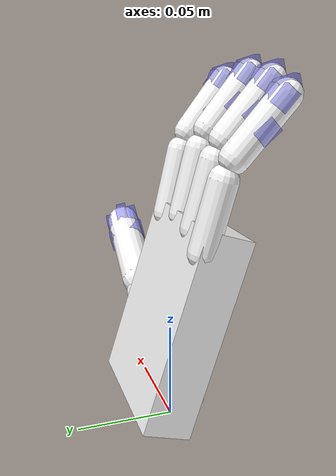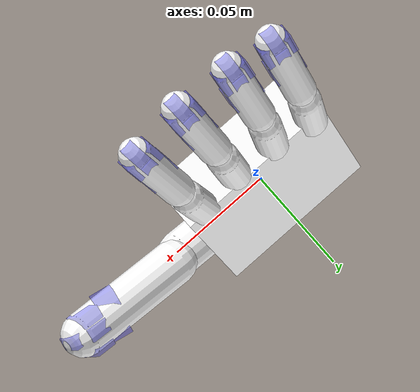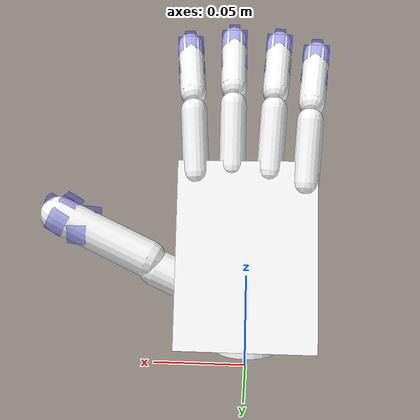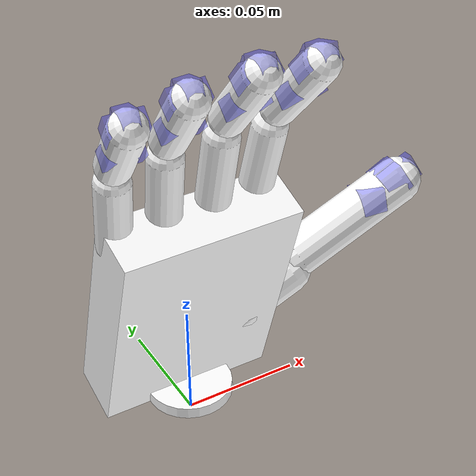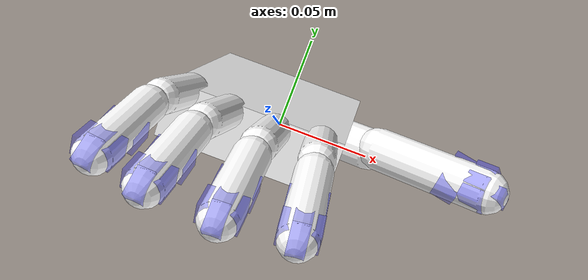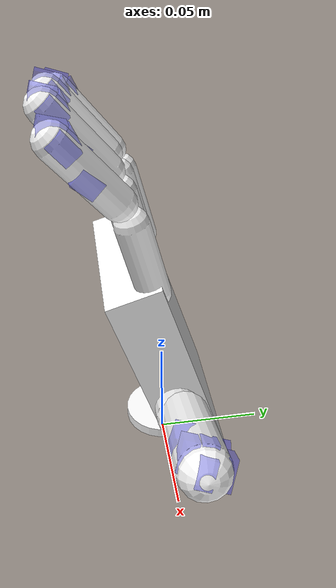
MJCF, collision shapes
<mujoco model="ability_hand">
  <compiler angle="radian" meshdir="./assets" autolimits="true"/>

  <default>
    <default class="ability_hand">

      <!--Visual Meshes-->
      <default class="visual_ah">
        <geom mass="0" type="mesh" contype="0" conaffinity="0" group="1" rgba="0.1 0.1 0.1 1"/>

        <default class="wrist_visual">
          <geom mesh="wrist_mesh" rgba ="0 0 0 1"/>
        </default>

        <default class="palm_visual">
          <geom pos="0.0240477 0.00378125 0.0323296" quat="0.0442297 0.00061027 0.999021 2.70192e-05" mesh="palm_mesh"/>
        </default>

        <default class="finger_visual">
          <geom rgba="0.15 0.15 0.15 1"/>

          <default class="finger_prox_vis">
            <geom pos="0.0384727 0.0032577 0" quat="0.999108 0 0 0.0422244" mesh="finger_prox_mesh"/>
          </default>

          <default class="finger_int_dist_vis">
            <geom pos="0.0091241 0 0" mesh="finger_int_dist_mesh"/>
          </default>

          <default class="thumb_metacarp_vis">
            <geom pos="0.0278284 0 -0.0147507" quat="-0.608761 0.793353 0 0" mesh="thumb_metacarp_mesh"/>
          </default>

          <default class="thumb_prox_dist_vis">
            <geom pos="0.0651867 0.0233402 -0.00393483" quat="3.21978e-07 0.985259 0.171069 5.59046e-08" mesh="thumb_prox_dist_mesh"/>
          </default>
        </default>
      </default>
      <!--/visual-->

      <!--Collisions Primitives-->
      <default class="collisions_ah">
        <geom rgba="1 1 1 1" group="3" solref=".01 .99" solimp=".95 .99 .002"/>
        <default class="wrist_collision">
          <geom type="cylinder" pos="0 0 0.0025" size="0.018 0.0025" mass="0.01591"/>
        </default>

        <default class="palm_collision">
          <geom type="box" quat="0.996 0.155 0 0" pos="0 -.001 0.05" size="0.037 0.012 0.050" solref=".01 1" solimp=".98 .995 .0005" mass="0.3592"/>
        </default>

        <default class="proximal_collision">
          <geom type="capsule" quat="0.707 0 0.707 0" pos="0.015 0.002 0" size="0.007 0.017" mass="0.00636"/>
        </default>

        <default class="int_dist_collision">
          <geom type="capsule" pos="0.018 -0.012 0" euler="1.5708 -2.0943951023931953 0" size="0.007 0.017" mass="0.006"/>
        </default>

        <default class="thumb_metacarp_collision">
          <geom type="capsule" pos="0.013 0 -0.005" quat="-0.9238795325112866 0.1 0.6526834323650898 0" size="0.010 0.013" mass="0.002"/>
        </default>

        <default class="thumb_prox_collision">
          <geom type="capsule" pos="0.027 0.01 -0.005" euler="-1.6708 1.2 0" size="0.010 0.027" mass="0.06"/>
        </default>
      </default>

      <!--Joints-->
      <default class="joints">
        <joint type="hinge" pos="0 0 0" axis="0 0 1" damping="0.01" frictionloss="0.1"/>
        <position kp="1" kv="0" ctrllimited="true"/>

        <default class="finger_mcp_joint">
          <joint range="0 1.74"/>
          <position ctrlrange="0 1.74"/>
        </default>

        <default class="finger_pip_joint">
          <joint range="0.766 2.61"/>
          <position ctrlrange="0.766 2.61"/>
        </default>

        <default class="thumb_mcp_joint">
          <joint range="0 1.91"/>
          <position ctrlrange="0 1.91"/>
        </default>

        <default class="thumb_cmc_joint">
          <joint range="-2.09 0"/>
          <position ctrlrange="-2.09 0"/>
        </default>

      </default>
    </default>
  </default>

  <asset>
    <mesh name="wrist_mesh" file="wristmesh.STL"/>
    <mesh name="palm_mesh" file="FB_palm_ref.STL"/>
    <mesh name="finger_prox_mesh" file="idx-F1.STL"/>
    <mesh name="finger_int_dist_mesh" file="idx-F2-Lg.STL"/>
    <mesh name="thumb_metacarp_mesh" file="thumb-F1.STL"/>
    <mesh name="thumb_prox_dist_mesh" file="thumb-F2.STL"/>
  </asset>

  <worldbody>
    <body name="ability_hand" pos="0 0 0.01" childclass="ability_hand">
      <joint type="free" name="base joint"/>
      <geom class="wrist_visual"/>
      <geom class="wrist_collision"/>
      <geom class="palm_visual"/>
      <geom class="palm_collision"/>
      <!--Index-->
      <body name="index_prox" pos="0.0279216 -0.00927034 0.0958706" quat="-0.714459 -0.129917 0.685906 0.0469401">
          <joint class="finger_mcp_joint" name="index_mcp"/>
          <geom class="proximal_collision"/>
          <geom class="finger_prox_vis"/>
          <body name="index_int_dist" pos="0.0384727 0.0032577 0" quat="0.999108 0 0 0.0422244">
            <site name="fsr5" type="box" size="0.003 0.005 0.0032" pos="0.03678129 -0.01966348  0." euler="-1.57079633  1.11908681 -1.57079633" rgba="0 0 1 0.3"/>
            <site name="fsr1" type="box" size="0.003 0.005 0.0035" pos="0.03087755 -0.01531625  0." euler="1.57079633 -0.25241514  1.5707963" rgba="0 0 1 0.3"/>
            <site name="fsr2" type="box" size="0.003 0.005 0.0038" pos="0.03118107 -0.01775288  0.004" euler="-1.57079633  0.51757639 -1.57079633" rgba="0 0 1 0.3"/>
            <site name="fsr4" type="box" size="0.003 0.005 0.0038" pos="0.01680497 -0.01308243  0.004" euler="-1.57079633  0.66148388 -1.57079633" rgba="0 0 1 0.3"/>
            <site name="fsr0" type="box" size="0.003 0.005 0.0038" pos="0.03118107 -0.01775288 -0.004" euler="-1.57079633  0.51757639 -1.57079633" rgba="0 0 1 0.3"/>
            <site name="fsr3" type="box" size="0.003 0.005 0.0038" pos="0.01680497 -0.01308243 -0.004" euler="-1.57079633  0.66148388 -1.57079633" rgba="0 0 1 0.3"/>
            <joint class="finger_pip_joint" name="index_pip"/>
            <geom class="int_dist_collision"/>
            <geom class="finger_int_dist_vis"/>
          </body>
      </body>
      <!--Middle-->
      <body name="middle_prox" pos="0.00841718 -0.0115172 0.0990634" quat="-0.698395 -0.103508 0.704562 0.0715738">
          <joint class="finger_mcp_joint" name="middle_mcp"/>
          <geom class="proximal_collision"/>
          <geom class="finger_prox_vis"/>
          <body name="middle_int_dist" pos="0.0384727 0.0032577 0" quat="0.999108 0 0 0.0422244">
            <joint class="finger_pip_joint" name="middle_pip"/>
            <site name="fsr11" type="box" size="0.003 0.005 0.0032" pos="0.03678129 -0.01966348  0." euler="-1.57079633  1.11908681 -1.57079633" rgba="0 0 1 0.3"/>
            <site name="fsr7" type="box" size="0.003 0.005 0.0035" pos="0.03087755 -0.01531625  0." euler="1.57079633 -0.25241514  1.5707963" rgba="0 0 1 0.3"/>
            <site name="fsr8" type="box" size="0.003 0.005 0.0038" pos="0.03118107 -0.01775288  0.004" euler="-1.57079633  0.51757639 -1.57079633" rgba="0 0 1 0.3"/>
            <site name="fsr10" type="box" size="0.003 0.005 0.0038" pos="0.01680497 -0.01308243  0.004" euler="-1.57079633  0.66148388 -1.57079633" rgba="0 0 1 0.3"/>
            <site name="fsr6" type="box" size="0.003 0.005 0.0038" pos="0.03118107 -0.01775288 -0.004" euler="-1.57079633  0.51757639 -1.57079633" rgba="0 0 1 0.3"/>
            <site name="fsr9" type="box" size="0.003 0.005 0.0038" pos="0.01680497 -0.01308243 -0.004" euler="-1.57079633  0.66148388 -1.57079633" rgba="0 0 1 0.3"/>
            <geom class="int_dist_collision"/>
            <geom class="finger_int_dist_vis"/>
          </body>
      </body>
      <!--Ring-->
      <body name="ring_prox" pos="-0.0117529 -0.0103946 0.0967038" quat="-0.681173 -0.0769649 0.721351 0.0986547">
          <joint class="finger_mcp_joint" name="ring_mcp"/>
          <geom class="proximal_collision"/>
          <geom class="finger_prox_vis"/>
          <body name="ring_int_dist" pos="0.0384727 0.0032577 0" quat="0.999108 0 0 0.0422244">
            <joint class="finger_pip_joint" name="ring_pip"/>
            <site name="fsr17" type="box" size="0.003 0.005 0.0032" pos="0.03678129 -0.01966348  0." euler="-1.57079633  1.11908681 -1.57079633" rgba="0 0 1 0.3"/>
            <site name="fsr13" type="box" size="0.003 0.005 0.0035" pos="0.03087755 -0.01531625  0." euler="1.57079633 -0.25241514  1.5707963" rgba="0 0 1 0.3"/>
            <site name="fsr14" type="box" size="0.003 0.005 0.0038" pos="0.03118107 -0.01775288  0.004" euler="-1.57079633  0.51757639 -1.57079633" rgba="0 0 1 0.3"/>
            <site name="fsr16" type="box" size="0.003 0.005 0.0038" pos="0.01680497 -0.01308243  0.004" euler="-1.57079633  0.66148388 -1.57079633" rgba="0 0 1 0.3"/>
            <site name="fsr12" type="box" size="0.003 0.005 0.0038" pos="0.03118107 -0.01775288 -0.004" euler="-1.57079633  0.51757639 -1.57079633" rgba="0 0 1 0.3"/>
            <site name="fsr15" type="box" size="0.003 0.005 0.0038" pos="0.01680497 -0.01308243 -0.004" euler="-1.57079633  0.66148388 -1.57079633" rgba="0 0 1 0.3"/>
            <geom class="int_dist_collision"/>
            <geom class="finger_int_dist_vis"/>
          </body>
      </body>
      <!--Pinky-->
      <body name="pinky_prox" pos="-0.0308633 -0.00716283 0.0907346" quat="-0.681748 -0.0544096 0.719226 0.122363" >
          <joint class="finger_mcp_joint" name="pinky_mcp"/>
          <geom class="proximal_collision"/>
          <geom class="finger_prox_vis"/>
          <body name="pinky_int_dist" pos="0.0384727 0.0032577 0" quat="0.999108 0 0 0.0422244">
            <joint class="finger_pip_joint" name="pinky_pip"/>
            <site name="fsr23" type="box" size="0.003 0.005 0.0032" pos="0.03678129 -0.01966348  0." euler="-1.57079633  1.11908681 -1.57079633" rgba="0 0 1 0.3"/>
            <site name="fsr19" type="box" size="0.003 0.005 0.0035" pos="0.03087755 -0.01531625  0." euler="1.57079633 -0.25241514  1.5707963" rgba="0 0 1 0.3"/>
            <site name="fsr20" type="box" size="0.003 0.005 0.0038" pos="0.03118107 -0.01775288  0.004" euler="-1.57079633  0.51757639 -1.57079633" rgba="0 0 1 0.3"/>
            <site name="fsr22" type="box" size="0.003 0.005 0.0038" pos="0.01680497 -0.01308243  0.004" euler="-1.57079633  0.66148388 -1.57079633" rgba="0 0 1 0.3"/>
            <site name="fsr18" type="box" size="0.003 0.005 0.0038" pos="0.03118107 -0.01775288 -0.004" euler="-1.57079633  0.51757639 -1.57079633" rgba="0 0 1 0.3"/>
            <site name="fsr21" type="box" size="0.003 0.005 0.0038" pos="0.01680497 -0.01308243 -0.004" euler="-1.57079633  0.66148388 -1.57079633" rgba="0 0 1 0.3"/>
            <geom class="int_dist_collision"/>
            <geom class="finger_int_dist_vis"/>
          </body>
      </body>
      <!--Thumb-->
      <body name="thumb_metacarp" pos="0.0240477 0.00378125 0.0323296" quat="-0.00419696 0.994514 -0.0947972 0.0440301">
        <joint class="thumb_cmc_joint" name="thumb_cmc"/>
        <geom class="thumb_metacarp_vis"/>
        <geom class="thumb_metacarp_collision"/>
        <body name="thumb_mcp" pos="0.0278284 0 -0.0147507" quat="-0.608761 0.793353 0 0">
          <site name="fsr29" type="box" size="0.003 0.005 0.0052" pos="0.055422  0.023513 -0.005055" euler="-1.57079633 -0.40123853 -1.57079633" rgba="0 0 1 0.3"/>
          <site name="fsr25" type="box" size="0.003 0.005 0.0055" pos="0.047909  0.02312  -0.005728" euler="-1.57079633 -0.44961601 -1.57079633" rgba="0 0 1 0.3"/>
          <site name="fsr26" type="box" size="0.003 0.005 0.0058" pos="0.048227 0.022352 0.000805" euler="-1.57079633 -0.43229053 -1.57079633" rgba="0 0 1 0.3"/>
          <site name="fsr28" type="box" size="0.005 0.005 0.0038" pos="0.036868 0.017111 0.001369" euler="0. 0. 0." rgba="0 0 1 0.3"/>
          <site name="fsr24" type="box" size="0.005 0.005 0.0060" pos="0.049435  0.019437 -0.01097" euler="-1.57079633 -0.44946695 -1.5707963" rgba="0 0 1 0.3"/>
          <site name="fsr27" type="box" size="0.005 0.005 0.0050" pos="0.038158  0.013997 -0.011211" euler="0. -0.  0." rgba="0 0 1 0.3"/>
          <joint class="thumb_mcp_joint" name="thumb_mcp"/>
          <geom class="thumb_prox_collision"/>
          <geom class="thumb_prox_dist_vis"/>
        </body>
      </body>
    </body>
  </worldbody>

  <sensor>
    <touch site="fsr0"/>
    <touch site="fsr1"/>
    <touch site="fsr2"/>
    <touch site="fsr3"/>
    <touch site="fsr4"/>
    <touch site="fsr5"/>
    <touch site="fsr6"/>
    <touch site="fsr7"/>
    <touch site="fsr8"/>
    <touch site="fsr9"/>
    <touch site="fsr10"/>
    <touch site="fsr11"/>
    <touch site="fsr12"/>
    <touch site="fsr13"/>
    <touch site="fsr14"/>
    <touch site="fsr15"/>
    <touch site="fsr16"/>
    <touch site="fsr17"/>
    <touch site="fsr18"/>
    <touch site="fsr19"/>
    <touch site="fsr20"/>
    <touch site="fsr21"/>
    <touch site="fsr22"/>
    <touch site="fsr23"/>
    <touch site="fsr24"/>
    <touch site="fsr25"/>
    <touch site="fsr26"/>
    <touch site="fsr27"/>
    <touch site="fsr28"/>
    <touch site="fsr29"/>
  </sensor>

  <!--Actuators-->
  <actuator>
    <position class="finger_mcp_joint" name="index_mcp_actuator" joint="index_mcp"/>
    <position class="finger_pip_joint" name="_index_pip_actuator" joint="index_pip"/>
    <position class="finger_mcp_joint" name="middle_mcp_actuator" joint="middle_mcp"/>
    <position class="finger_pip_joint" name="_middle_pip_actuator" joint="middle_pip"/>
    <position class="finger_mcp_joint" name="ring_mcp_actuator" joint="ring_mcp"/>
    <position class="finger_pip_joint" name="_ring_pip_actuator" joint="ring_pip"/>
    <position class="finger_mcp_joint" name="pinky_mcp_actuator" joint="pinky_mcp"/>
    <position class="finger_pip_joint" name="_pinky_pip_actuator" joint="pinky_pip"/>
    <position class="thumb_mcp_joint" name="thumb_flexor_actuator" joint="thumb_mcp"/>
    <position class="thumb_cmc_joint" name="thumb_rotator_actuator" joint="thumb_cmc"/>
  </actuator>

</mujoco>
